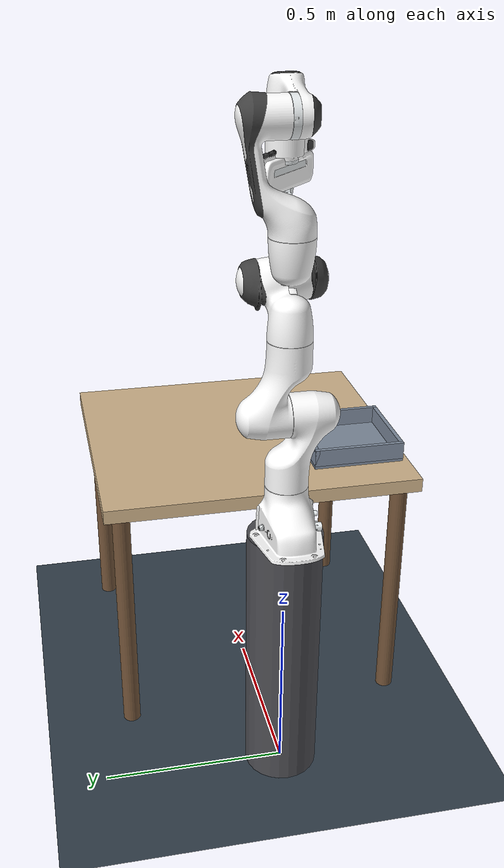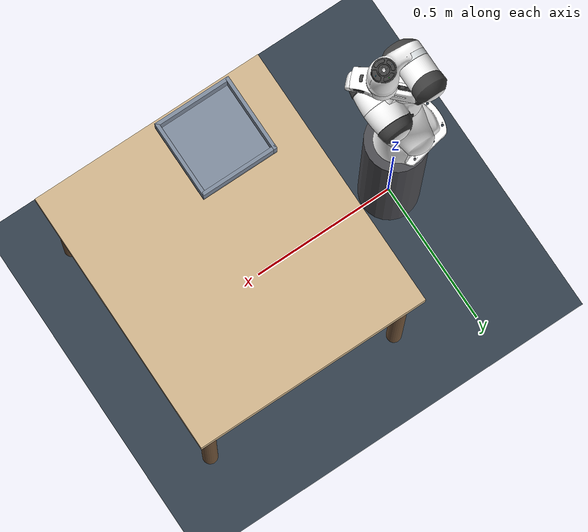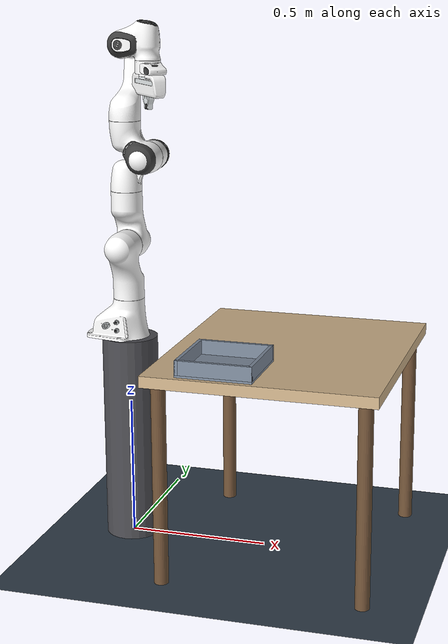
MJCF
<mujoco model="panda_tabletop_grasping">
  <include file="_panda_sim_patched.xml"/>

  <statistic center="0.55 0 0.9" extent="1.2"/>

  <visual>
    <headlight diffuse="0.6 0.6 0.6" ambient="0.3 0.3 0.3" specular="0 0 0"/>
    <global offwidth="1280" offheight="960" azimuth="120" elevation="-20"/>
    <map znear="0.005"/>
  </visual>

  <asset>
    <texture type="skybox" builtin="gradient" rgb1="0.4 0.5 0.6" rgb2="0.1 0.1 0.15" width="512" height="3072"/>
    <texture type="2d" name="groundplane" builtin="checker" mark="edge" rgb1="0.25 0.3 0.35" rgb2="0.15 0.2 0.25"
      markrgb="0.8 0.8 0.8" width="300" height="300"/>
    <material name="groundplane" texture="groundplane" texuniform="true" texrepeat="5 5" reflectance="0.1"/>
    <texture type="2d" name="tabletex" builtin="flat" rgb1="0.82 0.71 0.55" width="32" height="32"/>
    <material name="table_mat" texture="tabletex" reflectance="0.05"/>

  </asset>

  <worldbody>
    <light pos="0.6 0 2.2" dir="0 0 -1" directional="true" diffuse="0.7 0.7 0.7"/>
    <light pos="1.4 0.8 1.8" dir="-0.4 -0.4 -1" diffuse="0.35 0.35 0.35"/>
    <geom name="floor" size="0 0 0.05" type="plane" material="groundplane"/>

    <!-- Robot pedestal: lifts link0 (robot base frame) to tabletop height.
         T_world_base = Trans(0, 0, 0.75) -->
    <geom name="pedestal" type="cylinder" size="0.10 0.3750"
          pos="0 0 0.3750" rgba="0.3 0.3 0.32 1"/>

    <!-- Table: top surface is the z = 0.75 plane -->
    <geom name="table_top" type="box"
          size="0.4 0.45 0.0200"
          pos="0.6 0 0.7300" material="table_mat"
          friction="0.9 0.005 0.0001"/>
    <geom type="cylinder" size="0.025 0.3550" pos="0.250 0.400 0.3550" rgba="0.45 0.33 0.22 1" contype="0" conaffinity="0"/>
    <geom type="cylinder" size="0.025 0.3550" pos="0.250 -0.400 0.3550" rgba="0.45 0.33 0.22 1" contype="0" conaffinity="0"/>
    <geom type="cylinder" size="0.025 0.3550" pos="0.950 0.400 0.3550" rgba="0.45 0.33 0.22 1" contype="0" conaffinity="0"/>
    <geom type="cylinder" size="0.025 0.3550" pos="0.950 -0.400 0.3550" rgba="0.45 0.33 0.22 1" contype="0" conaffinity="0"/>

    <!-- Place bin (open-top tray, pick-and-place target) -->
    <geom name="bin_floor" type="box" size="0.1320 0.1320 0.004" pos="0.45 -0.3 0.7540" rgba="0.50 0.55 0.62 1"/>
    <geom name="bin_wall_xp" type="box" size="0.0060 0.1320 0.0250" pos="0.5760 -0.3 0.7830" rgba="0.50 0.55 0.62 1"/>
    <geom name="bin_wall_xm" type="box" size="0.0060 0.1320 0.0250" pos="0.3240 -0.3 0.7830" rgba="0.50 0.55 0.62 1"/>
    <geom name="bin_wall_yp" type="box" size="0.1320 0.0060 0.0250" pos="0.45 -0.1740 0.7830" rgba="0.50 0.55 0.62 1"/>
    <geom name="bin_wall_ym" type="box" size="0.1320 0.0060 0.0250" pos="0.45 -0.4260 0.7830" rgba="0.50 0.55 0.62 1"/>

    <!-- Eye-to-hand RGB-D camera, fixed in the WORLD frame (like a tripod-
         mounted RealSense D455 across the table). MuJoCo convention here;
         conversion to OpenCV happens in CameraModule. -->
    <camera name="ext_cam" pos="1.350000 0.000000 1.400000"
            xyaxes="0.000000 1.000000 -0.000000 -0.630593 0.000000 0.776114" fovy="58.0"/>

    <!-- Close-up side camera: only used to record execution GIFs -->
    <camera name="record_cam"
            pos="0.620000 -0.920000 1.180000"
            xyaxes="0.990621 0.136637 -0.000000 -0.054260 0.393382 0.917773" fovy="52.0"/>
    <!-- Second observation camera (P2 fusion) -->
    <camera name="side_cam" pos="0.024966 0.283392 1.397074" xyaxes="-0.024734 -0.999604 -0.013417 0.777362 -0.027670 0.628445" fovy="58.0"/>

    <body name="obj_0" pos="0 0 0" quat="0.96793 0 0 0.25123"><freejoint name="obj_0_joint"/><geom type="box" size="0.0217 0.0180 0.0481" rgba="0.904 0.559 0.931 1"/></body>
    <body name="obj_1" pos="0 0 0" quat="-0.95318 0 0 0.30239"><freejoint name="obj_1_joint"/><geom type="box" size="0.0196 0.0189 0.0476" rgba="0.290 0.847 0.585 1"/></body>
    <body name="obj_2" pos="0 0 0" quat="-0.97524 0 0 0.22113"><freejoint name="obj_2_joint"/><geom type="box" size="0.0148 0.0217 0.0447" rgba="0.937 0.446 0.925 1"/></body>
  </worldbody>
</mujoco>

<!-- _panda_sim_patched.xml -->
<mujoco model="panda">
  <compiler angle="radian" meshdir="assets" autolimits="true"/>

  <option integrator="implicitfast"/>

  <default>
    <default class="panda">
      <material specular="0.5" shininess="0.25"/>
      <joint armature="0.1" damping="1" axis="0 0 1" range="-2.8973 2.8973"/>
      <general dyntype="none" biastype="affine" ctrlrange="-2.8973 2.8973" forcerange="-87 87"/>
      <default class="finger">
        <joint axis="0 1 0" type="slide" range="0 0.04"/>
      </default>

      <default class="visual">
        <geom type="mesh" contype="0" conaffinity="0" group="2"/>
      </default>
      <default class="collision">
        <geom type="mesh" group="3"/>
        <default class="fingertip_pad_collision_1">
          <geom type="box" size="0.0085 0.004 0.0085" pos="0 0.0055 0.0445" friction="1.5 0.02 0.004" condim="4"/>
        </default>
        <default class="fingertip_pad_collision_2">
          <geom type="box" size="0.003 0.002 0.003" pos="0.0055 0.002 0.05" friction="1.5 0.02 0.004" condim="4"/>
        </default>
        <default class="fingertip_pad_collision_3">
          <geom type="box" size="0.003 0.002 0.003" pos="-0.0055 0.002 0.05" friction="1.5 0.02 0.004" condim="4"/>
        </default>
        <default class="fingertip_pad_collision_4">
          <geom type="box" size="0.003 0.002 0.0035" pos="0.0055 0.002 0.0395" friction="1.5 0.02 0.004" condim="4"/>
        </default>
        <default class="fingertip_pad_collision_5">
          <geom type="box" size="0.003 0.002 0.0035" pos="-0.0055 0.002 0.0395" friction="1.5 0.02 0.004" condim="4"/>
        </default>
      </default>
    </default>
  </default>

  <asset>
    <material class="panda" name="white" rgba="1 1 1 1"/>
    <material class="panda" name="off_white" rgba="0.901961 0.921569 0.929412 1"/>
    <material class="panda" name="black" rgba="0.25 0.25 0.25 1"/>
    <material class="panda" name="green" rgba="0 1 0 1"/>
    <material class="panda" name="light_blue" rgba="0.039216 0.541176 0.780392 1"/>

    <!-- Collision meshes -->
    <mesh name="link0_c" file="link0.stl"/>
    <mesh name="link1_c" file="link1.stl"/>
    <mesh name="link2_c" file="link2.stl"/>
    <mesh name="link3_c" file="link3.stl"/>
    <mesh name="link4_c" file="link4.stl"/>
    <mesh name="link5_c0" file="link5_collision_0.obj"/>
    <mesh name="link5_c1" file="link5_collision_1.obj"/>
    <mesh name="link5_c2" file="link5_collision_2.obj"/>
    <mesh name="link6_c" file="link6.stl"/>
    <mesh name="link7_c" file="link7.stl"/>
    <mesh name="hand_c" file="hand.stl"/>

    <!-- Visual meshes -->
    <mesh file="link0_0.obj"/>
    <mesh file="link0_1.obj"/>
    <mesh file="link0_2.obj"/>
    <mesh file="link0_3.obj"/>
    <mesh file="link0_4.obj"/>
    <mesh file="link0_5.obj"/>
    <mesh file="link0_7.obj"/>
    <mesh file="link0_8.obj"/>
    <mesh file="link0_9.obj"/>
    <mesh file="link0_10.obj"/>
    <mesh file="link0_11.obj"/>
    <mesh file="link1.obj"/>
    <mesh file="link2.obj"/>
    <mesh file="link3_0.obj"/>
    <mesh file="link3_1.obj"/>
    <mesh file="link3_2.obj"/>
    <mesh file="link3_3.obj"/>
    <mesh file="link4_0.obj"/>
    <mesh file="link4_1.obj"/>
    <mesh file="link4_2.obj"/>
    <mesh file="link4_3.obj"/>
    <mesh file="link5_0.obj"/>
    <mesh file="link5_1.obj"/>
    <mesh file="link5_2.obj"/>
    <mesh file="link6_0.obj"/>
    <mesh file="link6_1.obj"/>
    <mesh file="link6_2.obj"/>
    <mesh file="link6_3.obj"/>
    <mesh file="link6_4.obj"/>
    <mesh file="link6_5.obj"/>
    <mesh file="link6_6.obj"/>
    <mesh file="link6_7.obj"/>
    <mesh file="link6_8.obj"/>
    <mesh file="link6_9.obj"/>
    <mesh file="link6_10.obj"/>
    <mesh file="link6_11.obj"/>
    <mesh file="link6_12.obj"/>
    <mesh file="link6_13.obj"/>
    <mesh file="link6_14.obj"/>
    <mesh file="link6_15.obj"/>
    <mesh file="link6_16.obj"/>
    <mesh file="link7_0.obj"/>
    <mesh file="link7_1.obj"/>
    <mesh file="link7_2.obj"/>
    <mesh file="link7_3.obj"/>
    <mesh file="link7_4.obj"/>
    <mesh file="link7_5.obj"/>
    <mesh file="link7_6.obj"/>
    <mesh file="link7_7.obj"/>
    <mesh file="hand_0.obj"/>
    <mesh file="hand_1.obj"/>
    <mesh file="hand_2.obj"/>
    <mesh file="hand_3.obj"/>
    <mesh file="hand_4.obj"/>
    <mesh file="finger_0.obj"/>
    <mesh file="finger_1.obj"/>
  </asset>

  <worldbody>
    <light name="top" pos="0 0 2" mode="trackcom"/>
    <body name="link0" childclass="panda" pos="0 0 0.75">
      <inertial mass="0.629769" pos="-0.041018 -0.00014 0.049974"
        fullinertia="0.00315 0.00388 0.004285 8.2904e-7 0.00015 8.2299e-6"/>
      <geom mesh="link0_0" material="off_white" class="visual"/>
      <geom mesh="link0_1" material="black" class="visual"/>
      <geom mesh="link0_2" material="off_white" class="visual"/>
      <geom mesh="link0_3" material="black" class="visual"/>
      <geom mesh="link0_4" material="off_white" class="visual"/>
      <geom mesh="link0_5" material="black" class="visual"/>
      <geom mesh="link0_7" material="white" class="visual"/>
      <geom mesh="link0_8" material="white" class="visual"/>
      <geom mesh="link0_9" material="black" class="visual"/>
      <geom mesh="link0_10" material="off_white" class="visual"/>
      <geom mesh="link0_11" material="white" class="visual"/>
      <geom mesh="link0_c" class="collision"/>
      <body name="link1" pos="0 0 0.333">
        <inertial mass="4.970684" pos="0.003875 0.002081 -0.04762"
          fullinertia="0.70337 0.70661 0.0091170 -0.00013900 0.0067720 0.019169"/>
        <joint name="joint1"/>
        <geom material="white" mesh="link1" class="visual"/>
        <geom mesh="link1_c" class="collision"/>
        <body name="link2" quat="1 -1 0 0">
          <inertial mass="0.646926" pos="-0.003141 -0.02872 0.003495"
            fullinertia="0.0079620 2.8110e-2 2.5995e-2 -3.925e-3 1.0254e-2 7.04e-4"/>
          <joint name="joint2" range="-1.7628 1.7628"/>
          <geom material="white" mesh="link2" class="visual"/>
          <geom mesh="link2_c" class="collision"/>
          <body name="link3" pos="0 -0.316 0" quat="1 1 0 0">
            <joint name="joint3"/>
            <inertial mass="3.228604" pos="2.7518e-2 3.9252e-2 -6.6502e-2"
              fullinertia="3.7242e-2 3.6155e-2 1.083e-2 -4.761e-3 -1.1396e-2 -1.2805e-2"/>
            <geom mesh="link3_0" material="white" class="visual"/>
            <geom mesh="link3_1" material="white" class="visual"/>
            <geom mesh="link3_2" material="white" class="visual"/>
            <geom mesh="link3_3" material="black" class="visual"/>
            <geom mesh="link3_c" class="collision"/>
            <body name="link4" pos="0.0825 0 0" quat="1 1 0 0">
              <inertial mass="3.587895" pos="-5.317e-2 1.04419e-1 2.7454e-2"
                fullinertia="2.5853e-2 1.9552e-2 2.8323e-2 7.796e-3 -1.332e-3 8.641e-3"/>
              <joint name="joint4" range="-3.0718 -0.0698"/>
              <geom mesh="link4_0" material="white" class="visual"/>
              <geom mesh="link4_1" material="white" class="visual"/>
              <geom mesh="link4_2" material="black" class="visual"/>
              <geom mesh="link4_3" material="white" class="visual"/>
              <geom mesh="link4_c" class="collision"/>
              <body name="link5" pos="-0.0825 0.384 0" quat="1 -1 0 0">
                <inertial mass="1.225946" pos="-1.1953e-2 4.1065e-2 -3.8437e-2"
                  fullinertia="3.5549e-2 2.9474e-2 8.627e-3 -2.117e-3 -4.037e-3 2.29e-4"/>
                <joint name="joint5"/>
                <geom mesh="link5_0" material="black" class="visual"/>
                <geom mesh="link5_1" material="white" class="visual"/>
                <geom mesh="link5_2" material="white" class="visual"/>
                <geom mesh="link5_c0" class="collision"/>
                <geom mesh="link5_c1" class="collision"/>
                <geom mesh="link5_c2" class="collision"/>
                <body name="link6" quat="1 1 0 0">
                  <inertial mass="1.666555" pos="6.0149e-2 -1.4117e-2 -1.0517e-2"
                    fullinertia="1.964e-3 4.354e-3 5.433e-3 1.09e-4 -1.158e-3 3.41e-4"/>
                  <joint name="joint6" range="-0.0175 3.7525"/>
                  <geom mesh="link6_0" material="off_white" class="visual"/>
                  <geom mesh="link6_1" material="white" class="visual"/>
                  <geom mesh="link6_2" material="black" class="visual"/>
                  <geom mesh="link6_3" material="white" class="visual"/>
                  <geom mesh="link6_4" material="white" class="visual"/>
                  <geom mesh="link6_5" material="white" class="visual"/>
                  <geom mesh="link6_6" material="white" class="visual"/>
                  <geom mesh="link6_7" material="light_blue" class="visual"/>
                  <geom mesh="link6_8" material="light_blue" class="visual"/>
                  <geom mesh="link6_9" material="black" class="visual"/>
                  <geom mesh="link6_10" material="black" class="visual"/>
                  <geom mesh="link6_11" material="white" class="visual"/>
                  <geom mesh="link6_12" material="green" class="visual"/>
                  <geom mesh="link6_13" material="white" class="visual"/>
                  <geom mesh="link6_14" material="black" class="visual"/>
                  <geom mesh="link6_15" material="black" class="visual"/>
                  <geom mesh="link6_16" material="white" class="visual"/>
                  <geom mesh="link6_c" class="collision"/>
                  <body name="link7" pos="0.088 0 0" quat="1 1 0 0">
                    <inertial mass="7.35522e-01" pos="1.0517e-2 -4.252e-3 6.1597e-2"
                      fullinertia="1.2516e-2 1.0027e-2 4.815e-3 -4.28e-4 -1.196e-3 -7.41e-4"/>
                    <joint name="joint7"/>
                    <geom mesh="link7_0" material="white" class="visual"/>
                    <geom mesh="link7_1" material="black" class="visual"/>
                    <geom mesh="link7_2" material="black" class="visual"/>
                    <geom mesh="link7_3" material="black" class="visual"/>
                    <geom mesh="link7_4" material="black" class="visual"/>
                    <geom mesh="link7_5" material="black" class="visual"/>
                    <geom mesh="link7_6" material="black" class="visual"/>
                    <geom mesh="link7_7" material="white" class="visual"/>
                    <geom mesh="link7_c" class="collision"/>
                    <body name="hand" pos="0 0 0.107" quat="0.9238795 0 0 -0.3826834">
                      <inertial mass="0.73" pos="-0.01 0 0.03" diaginertia="0.001 0.0025 0.0017"/>
                      <geom mesh="hand_0" material="off_white" class="visual"/>
                      <geom mesh="hand_1" material="black" class="visual"/>
                      <geom mesh="hand_2" material="black" class="visual"/>
                      <geom mesh="hand_3" material="white" class="visual"/>
                      <geom mesh="hand_4" material="off_white" class="visual"/>
                      <geom mesh="hand_c" class="collision"/>
                      <body name="left_finger" pos="0 0 0.0584">
                        <inertial mass="0.015" pos="0 0 0" diaginertia="2.375e-6 2.375e-6 7.5e-7"/>
                        <joint name="finger_joint1" class="finger"/>
                        <geom mesh="finger_0" material="off_white" class="visual"/>
                        <geom mesh="finger_1" material="black" class="visual"/>
                        <geom mesh="finger_0" class="collision"/>
                        <geom class="fingertip_pad_collision_1"/>
                        <geom class="fingertip_pad_collision_2"/>
                        <geom class="fingertip_pad_collision_3"/>
                        <geom class="fingertip_pad_collision_4"/>
                        <geom class="fingertip_pad_collision_5"/>
                      </body>
                      <body name="right_finger" pos="0 0 0.0584" quat="0 0 0 1">
                        <inertial mass="0.015" pos="0 0 0" diaginertia="2.375e-6 2.375e-6 7.5e-7"/>
                        <joint name="finger_joint2" class="finger"/>
                        <geom mesh="finger_0" material="off_white" class="visual"/>
                        <geom mesh="finger_1" material="black" class="visual"/>
                        <geom mesh="finger_0" class="collision"/>
                        <geom class="fingertip_pad_collision_1"/>
                        <geom class="fingertip_pad_collision_2"/>
                        <geom class="fingertip_pad_collision_3"/>
                        <geom class="fingertip_pad_collision_4"/>
                        <geom class="fingertip_pad_collision_5"/>
                      </body>
                    </body>
                  </body>
                </body>
              </body>
            </body>
          </body>
        </body>
      </body>
    </body>
  </worldbody>

  <tendon>
    <fixed name="split">
      <joint joint="finger_joint1" coef="0.5"/>
      <joint joint="finger_joint2" coef="0.5"/>
    </fixed>
  </tendon>

  <equality>
    <joint joint1="finger_joint1" joint2="finger_joint2" solimp="0.95 0.99 0.001" solref="0.005 1"/>
  </equality>

  <actuator>
    <general class="panda" name="actuator1" joint="joint1" gainprm="4500" biasprm="0 -4500 -450"/>
    <general class="panda" name="actuator2" joint="joint2" gainprm="4500" biasprm="0 -4500 -450"
      ctrlrange="-1.7628 1.7628"/>
    <general class="panda" name="actuator3" joint="joint3" gainprm="3500" biasprm="0 -3500 -350"/>
    <general class="panda" name="actuator4" joint="joint4" gainprm="3500" biasprm="0 -3500 -350"
      ctrlrange="-3.0718 -0.0698"/>
    <general class="panda" name="actuator5" joint="joint5" gainprm="2000" biasprm="0 -2000 -200" forcerange="-12 12"/>
    <general class="panda" name="actuator6" joint="joint6" gainprm="2000" biasprm="0 -2000 -200" forcerange="-12 12"
      ctrlrange="-0.0175 3.7525"/>
    <general class="panda" name="actuator7" joint="joint7" gainprm="2000" biasprm="0 -2000 -200" forcerange="-12 12"/>
    <!-- Remap original ctrlrange (0, 0.04) to (0, 255): 0.04 * 100 / 255 = 0.01568627451 -->
    <general class="panda" name="actuator8" tendon="split" forcerange="-100 100" ctrlrange="0 255"
      gainprm="0.01568627451 0 0" biasprm="0 -100 -10"/>
  </actuator>

  <contact>
    <exclude body1="link0" body2="link1"/>
  </contact>
</mujoco>
